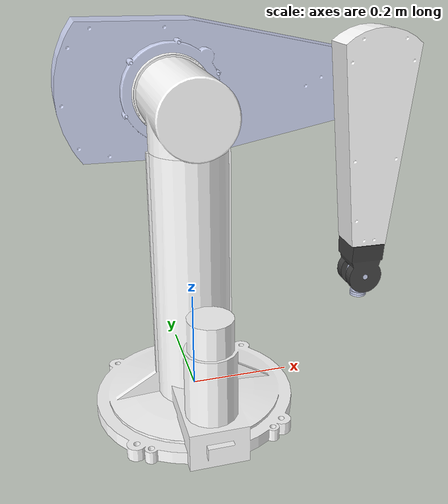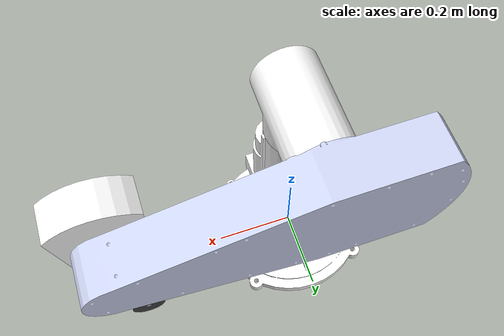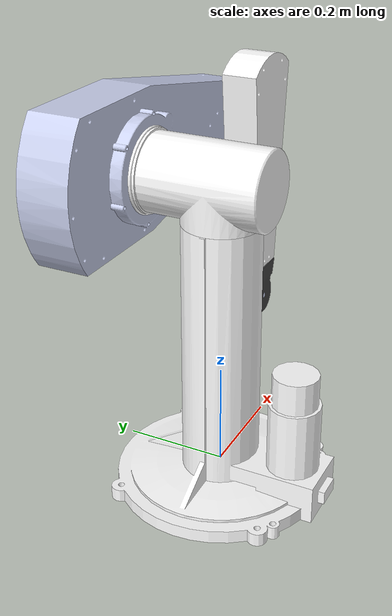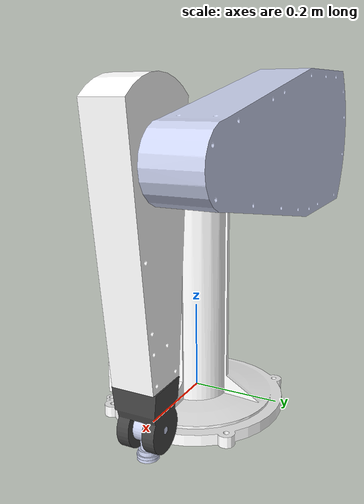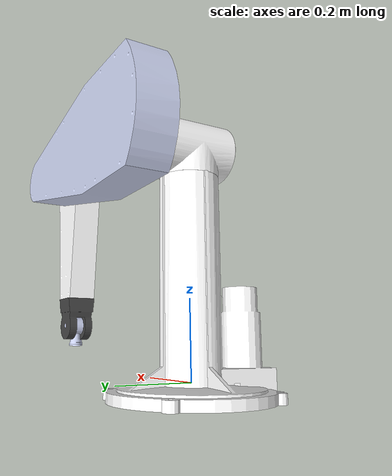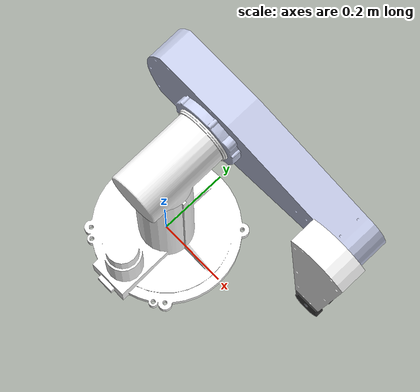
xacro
<?xml version="1.0" encoding="utf-8"?>
<robot xmlns:xacro="http://www.ros.org/wiki/xacro"
 	     xmlns:sensor="http://playerstage.sourceforge.net/gazebo/xmlschema/#sensor"
    	 xmlns:controller="http://playerstage.sourceforge.net/gazebo/xmlschema/#controller"
    	 xmlns:interface="http://playerstage.sourceforge.net/gazebo/xmlschema/#interface"
       name="robot_puma_560">

  <xacro:macro name="transmission_block" params="joint_name">
               <transmission name="tran1">
			<type>transmission_interface/SimpleTransmission</type>
			<joint name="${joint_name}">
				<hardwareInterface>EffortJointInterface</hardwareInterface>
			</joint>
			<actuator name="motor1">
    				<mechanicalReduction>1</mechanicalReduction>
    				<hardwareInterface>EffortJointInterface</hardwareInterface>
  			</actuator>
		</transmission>
	</xacro:macro>
  <link name="world" />
  <link
    name="base_link">
    <inertial>
      <origin
        xyz="9.5376E-11 -0.021962 0.21792"
        rpy="0 0 0" />
      <mass
        value="15.787" />
      <inertia
        ixx="0.55024"
        ixy="-2.863E-11"
        ixz="1.6743E-10"
        iyy="0.50424"
        iyz="-0.022162"
        izz="0.16071" />
    </inertial>
    <visual>
      <origin
        xyz="0 0 0"
        rpy="0 0 0" />
      <geometry>
        <mesh
          filename="package://robot_puma_560/meshes/base_link.STL" />
      </geometry>
      <material
        name="">
        <color
          rgba="1 1 1 1" />
      </material>
    </visual>
    <collision>
      <origin
        xyz="0 0 0"
        rpy="0 0 0" />
      <geometry>
        <mesh
          filename="package://robot_puma_560/meshes/base_link.STL" />
      </geometry>
    </collision>
  </link>
  <joint name="joint_0=" type="fixed">
     <origin
      xyz="0 0 0.58"
      rpy="0 0 0" />
     <parent link="world"/>
     <child link="base_link"/>
  </joint>
  <link
    name="Link_1">
    <inertial>
      <origin
        xyz="2.2813E-06 0.022505 -0.0027897"
        rpy="0 0 0" />
      <mass
        value="4.4341" />
      <inertia
        ixx="0.027328"
        ixy="-1.5282E-06"
        ixz="-2.2409E-08"
        iyy="0.013316"
        iyz="-0.00027854"
        izz="0.027164" />
    </inertial>
    <visual>
      <origin
        xyz="0 0 0"
        rpy="0 0 0" />
      <geometry>
        <mesh
          filename="package://robot_puma_560/meshes/Link_1.STL" />
      </geometry>
      <material
        name="">
        <color
          rgba="1 1 1 1" />
      </material>
    </visual>
    <collision>
      <origin
        xyz="0 0 0"
        rpy="0 0 0" />
      <geometry>
        <mesh
          filename="package://robot_puma_560/meshes/Link_1.STL" />
      </geometry>
    </collision>
  </link>
  <joint
    name="joint_1"
    type="continuous">
    <origin
      xyz="0 0 0"
      rpy="0 0 0" />
    <parent
      link="base_link" />
    <child
      link="Link_1" />
    <axis
      xyz="0 0 1" />
  </joint>
  <link
    name="Link_2">
    <inertial>
      <origin
        xyz="0.082755 0.00088274 0.21527"
        rpy="0 0 0" />
      <mass
        value="16.847" />
      <inertia
        ixx="0.097292"
        ixy="-0.0056175"
        ixz="-0.0042857"
        iyy="0.59651"
        iyz="-9.6614E-05"
        izz="0.65976" />
    </inertial>
    <visual>
      <origin
        xyz="0 0 0"
        rpy="0 0 0" />
      <geometry>
        <mesh
          filename="package://robot_puma_560/meshes/Link_2.STL" />
      </geometry>
      <material
        name="">
        <color
          rgba="0.79216 0.81961 0.93333 1" />
      </material>
    </visual>
    <collision>
      <origin
        xyz="0 0 0"
        rpy="0 0 0" />
      <geometry>
        <mesh
          filename="package://robot_puma_560/meshes/Link_2.STL" />
      </geometry>
    </collision>
  </link>
  <joint
    name="joint_2"
    type="continuous">
    <origin
      xyz="0 0 0"
      rpy="-1.5708 0 0" />
    <parent
      link="Link_1" />
    <child
      link="Link_2" />
    <axis
      xyz="-0.00010835 0 1" />
  </joint>
  <link
    name="Link_3">
    <inertial>
      <origin
        xyz="-1.1788E-06 0.088774 -0.01236"
        rpy="0 0 0" />
      <mass
        value="4.6025" />
      <inertia
        ixx="0.082615"
        ixy="4.837E-07"
        ixz="3.6529E-07"
        iyy="0.0091916"
        iyz="2.2739E-06"
        izz="0.087355" />
    </inertial>
    <visual>
      <origin
        xyz="0 0 0"
        rpy="0 0 0" />
      <geometry>
        <mesh
          filename="package://robot_puma_560/meshes/Link_3.STL" />
      </geometry>
      <material
        name="">
        <color
          rgba="1 1 1 1" />
      </material>
    </visual>
    <collision>
      <origin
        xyz="0 0 0"
        rpy="0 0 0" />
      <geometry>
        <mesh
          filename="package://robot_puma_560/meshes/Link_3.STL" />
      </geometry>
    </collision>
  </link>
  <joint
    name="joint_3"
    type="continuous">
    <origin
      xyz="0.43179 0.0048511 0.14185"
      rpy="0 0.00010834 0.011978" />
    <parent
      link="Link_2" />
    <child
      link="Link_3" />
    <axis
      xyz="0 0 1" />
  </joint>
  <link
    name="Link_4">
    <inertial>
      <origin
        xyz="0.0005347 -2.7756E-17 -0.032405"
        rpy="0 0 0" />
      <mass
        value="0.47079" />
      <inertia
        ixx="0.0007728"
        ixy="4.2352E-21"
        ixz="5.0487E-06"
        iyy="0.00073772"
        iyz="2.5437E-20"
        izz="0.00046692" />
    </inertial>
    <visual>
      <origin
        xyz="0 0 0"
        rpy="0 0 0" />
      <geometry>
        <mesh
          filename="package://robot_puma_560/meshes/Link_4.STL" />
      </geometry>
      <material
        name="">
        <color
          rgba="0.25098 0.25098 0.25098 1" />
      </material>
    </visual>
    <collision>
      <origin
        xyz="0 0 0"
        rpy="0 0 0" />
      <geometry>
        <mesh
          filename="package://robot_puma_560/meshes/Link_4.STL" />
      </geometry>
    </collision>
  </link>
  <joint
    name="joint_4"
    type="continuous">
    <origin
      xyz="0 0.43209 -0.012362"
      rpy="-1.5706 -0.0098803 -0.0165" />
    <parent
      link="Link_3" />
    <child
      link="Link_4" />
    <axis
      xyz="0.016498 0 0.99986" />
  </joint>
  <link
    name="Link_5">
    <inertial>
      <origin
        xyz="5.3025E-10 0.010974 -7.1165E-11"
        rpy="0 0 0" />
      <mass
        value="0.077406" />
      <inertia
        ixx="4.3032E-05"
        ixy="9.8382E-13"
        ixz="1.205E-11"
        iyy="1.6966E-05"
        iyz="6.2843E-14"
        izz="4.5414E-05" />
    </inertial>
    <visual>
      <origin
        xyz="0 0 0"
        rpy="0 0 0" />
      <geometry>
        <mesh
          filename="package://robot_puma_560/meshes/Link_5.STL" />
      </geometry>
      <material
        name="">
        <color
          rgba="0.79216 0.81961 0.93333 1" />
      </material>
    </visual>
    <collision>
      <origin
        xyz="0 0 0"
        rpy="0 0 0" />
      <geometry>
        <mesh
          filename="package://robot_puma_560/meshes/Link_5.STL" />
      </geometry>
    </collision>
  </link>
  <joint
    name="joint_5"
    type="continuous">
    <origin
      xyz="0 0 0"
      rpy="1.5708 0 0" />
    <parent
      link="Link_4" />
    <child
      link="Link_5" />
    <axis
      xyz="0 0 -1" />
  </joint>
  <link
    name="Link_6">
    <inertial>
      <origin
        xyz="1.1102E-16 -5.5511E-17 0.05588"
        rpy="0 0 0" />
      <mass
        value="0.0055857" />
      <inertia
        ixx="5.3713E-07"
        ixy="5.3198E-23"
        ixz="-2.088E-22"
        iyy="5.1845E-07"
        iyz="1.3981E-22"
        izz="1.0316E-06" />
    </inertial>
    <visual>
      <origin
        xyz="0 0 0"
        rpy="0 0 0" />
      <geometry>
        <mesh
          filename="package://robot_puma_560/meshes/Link_6.STL" />
      </geometry>
      <material
        name="">
        <color
          rgba="0.79216 0.81961 0.93333 1" />
      </material>
    </visual>
    <collision>
      <origin
        xyz="0 0 0"
        rpy="0 0 0" />
      <geometry>
          <mesh
          filename="package://robot_puma_560/meshes/Link_6.STL" />
      </geometry>
    </collision>
  </link>
  <joint
    name="joint_6"
    type="continuous">
    <origin
      xyz="0 0 0"
      rpy="-1.5708 0.0089975 0" />
    <parent
      link="Link_5" />
    <child
      link="Link_6" />
    <axis
      xyz="0 0 1" />
  </joint>

  <xacro:transmission_block joint_name="joint_1"/>
  <xacro:transmission_block joint_name="joint_2"/>
  <xacro:transmission_block joint_name="joint_3"/>
  <xacro:transmission_block joint_name="joint_4"/>
  <xacro:transmission_block joint_name="joint_5"/>
  <xacro:transmission_block joint_name="joint_6"/>

  <gazebo>
	<plugin name="gazebo_ros_control"
		filename="libgazebo_ros_control.so">
		<robotNamespace>/robot1</robotNamespace>
	</plugin>
  </gazebo>

</robot>
